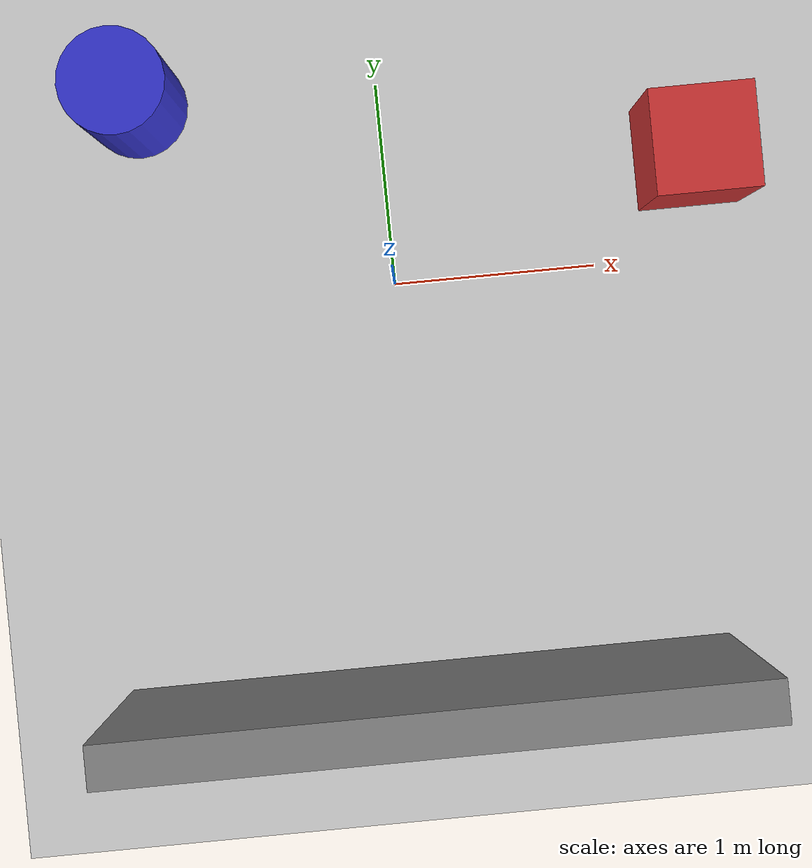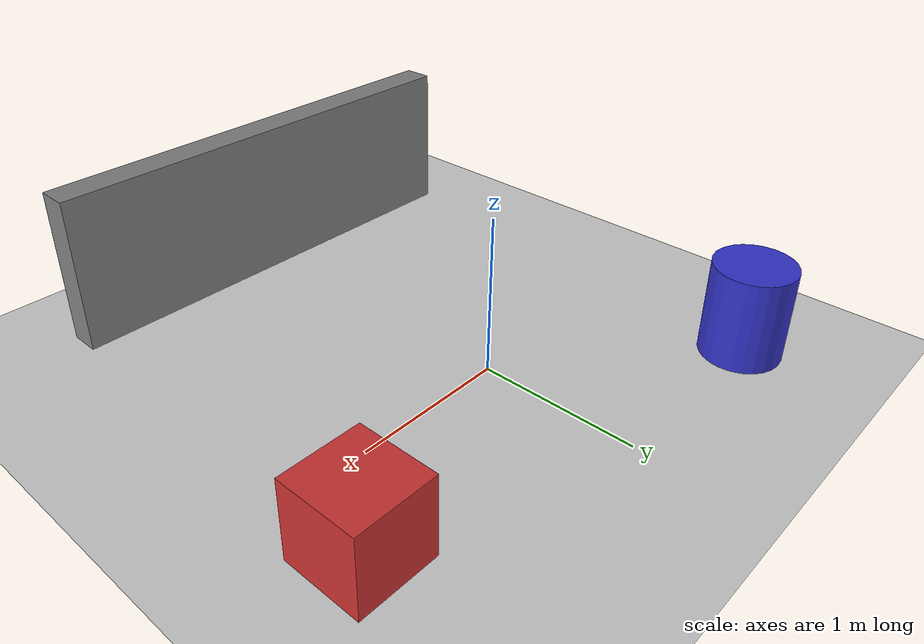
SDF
<?xml version="1.0" ?>
<sdf version="1.6">
  <world name="turtlebot3_project_world">

    <include>
      <uri>model://sun</uri>
    </include>

    <include>
      <uri>model://ground_plane</uri>
    </include>

    <physics type="ode">
      <real_time_update_rate>1000.0</real_time_update_rate>
      <max_step_size>0.001</max_step_size>
    </physics>

    <!-- Obstacle 1: box -->
    <model name="obstacle_box_1">
      <static>true</static>
      <pose>1.5 0.5 0.25 0 0 0</pose>
      <link name="link">
        <collision name="collision">
          <geometry>
            <box><size>0.5 0.5 0.5</size></box>
          </geometry>
        </collision>
        <visual name="visual">
          <geometry>
            <box><size>0.5 0.5 0.5</size></box>
          </geometry>
          <material>
            <ambient>0.8 0.2 0.2 1</ambient>
          </material>
        </visual>
      </link>
    </model>

    <!-- Obstacle 2: cylinder -->
    <model name="obstacle_cylinder_1">
      <static>true</static>
      <pose>-1.2 1.0 0.3 0 0 0</pose>
      <link name="link">
        <collision name="collision">
          <geometry>
            <cylinder><radius>0.25</radius><length>0.6</length></cylinder>
          </geometry>
        </collision>
        <visual name="visual">
          <geometry>
            <cylinder><radius>0.25</radius><length>0.6</length></cylinder>
          </geometry>
          <material>
            <ambient>0.2 0.2 0.8 1</ambient>
          </material>
        </visual>
      </link>
    </model>

    <!-- Obstacle 3: wall segment -->
    <model name="obstacle_wall_1">
      <static>true</static>
      <pose>0 -2 0.5 0 0 0</pose>
      <link name="link">
        <collision name="collision">
          <geometry>
            <box><size>3.0 0.2 1.0</size></box>
          </geometry>
        </collision>
        <visual name="visual">
          <geometry>
            <box><size>3.0 0.2 1.0</size></box>
          </geometry>
          <material>
            <ambient>0.5 0.5 0.5 1</ambient>
          </material>
        </visual>
      </link>
    </model>

  </world>
</sdf>
